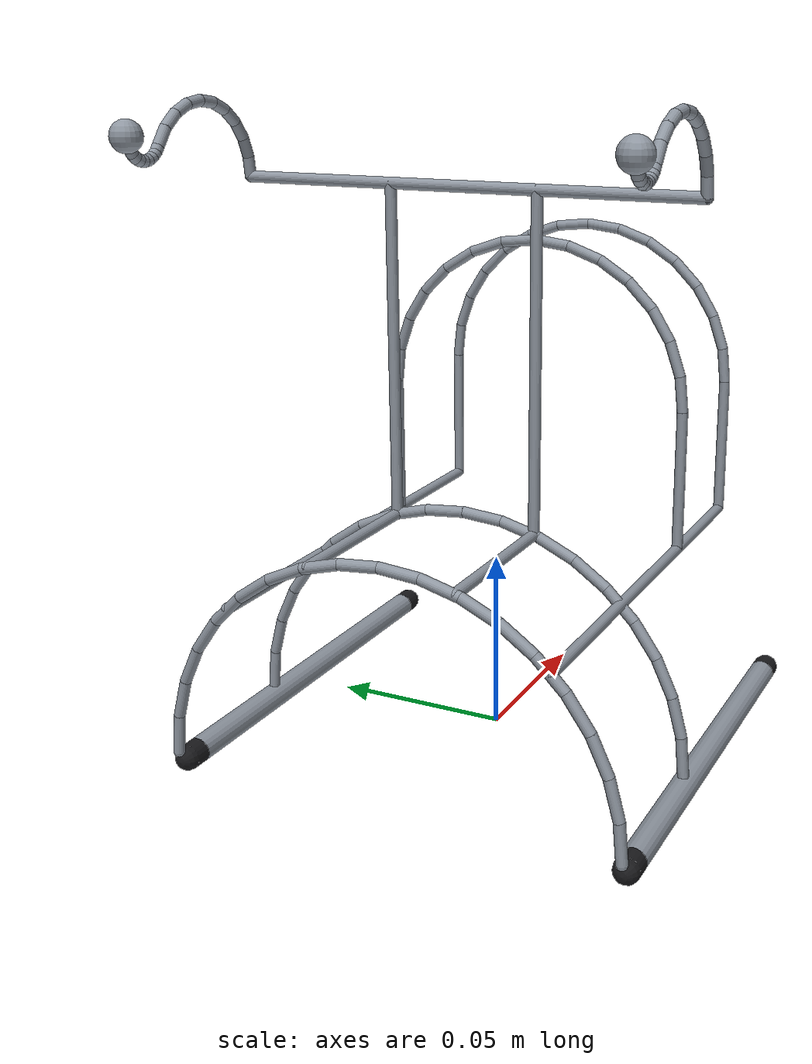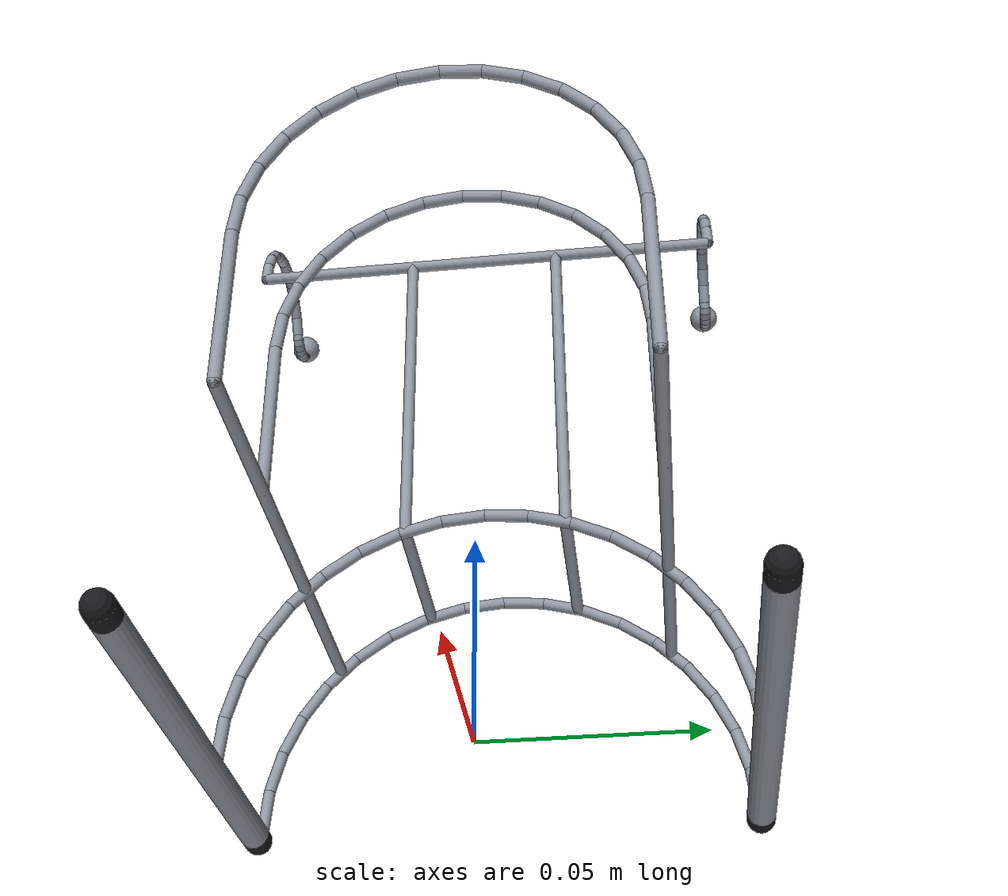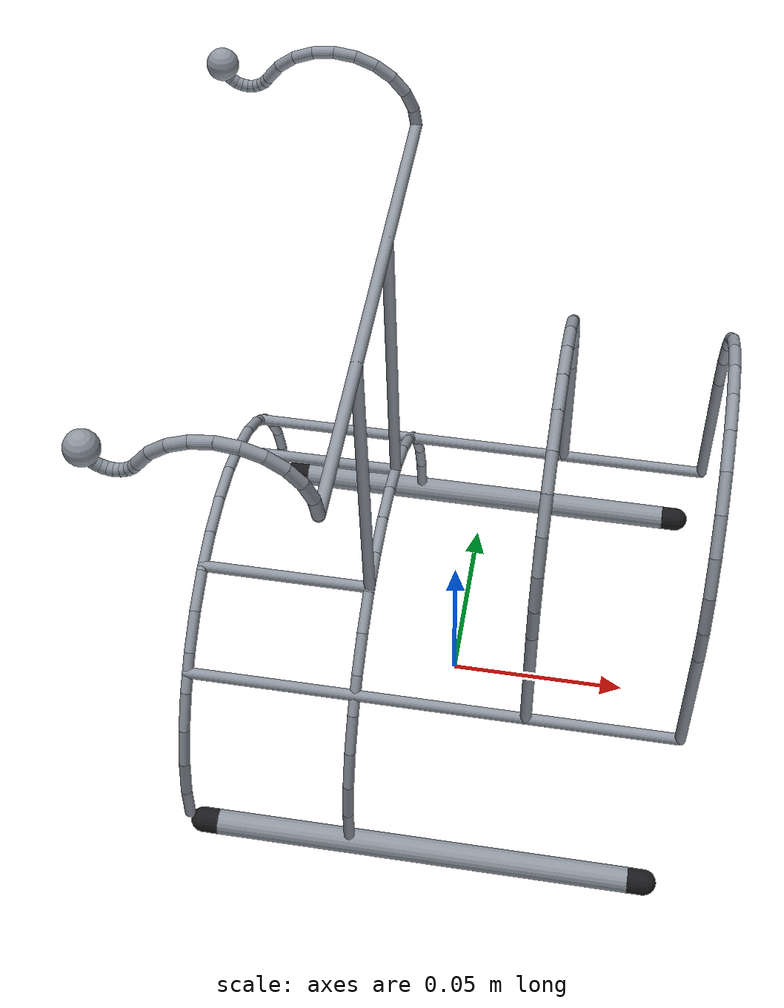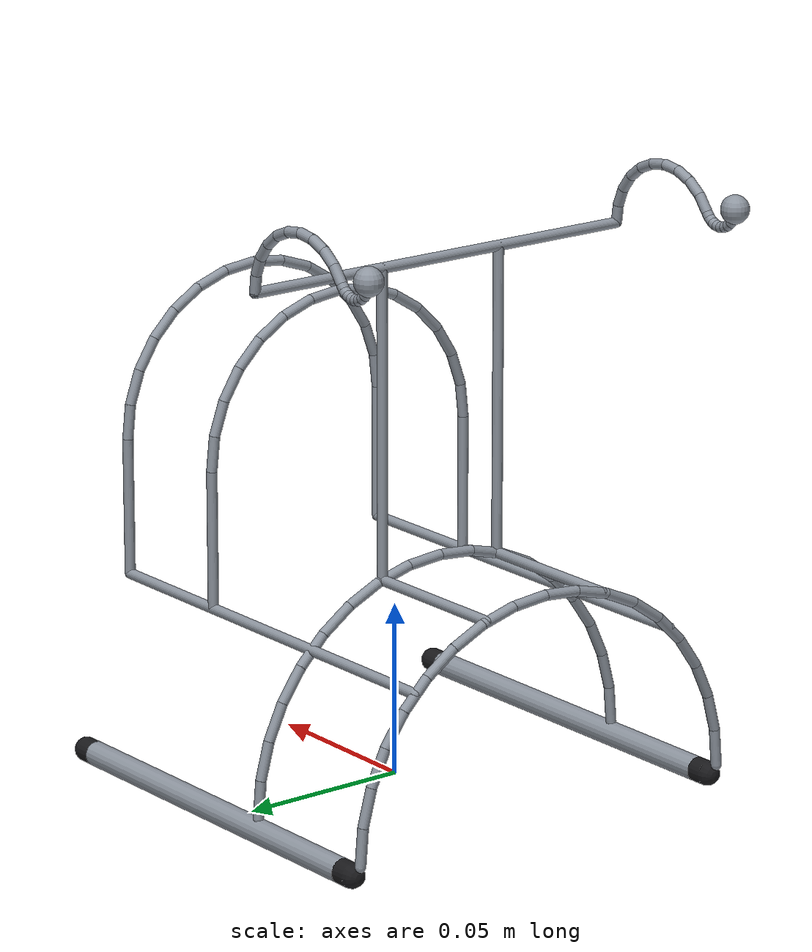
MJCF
<mujoco model="cup_holder">

  <asset>
    <material name="chrome" rgba="0.56 0.59 0.63 1"
              specular="1" shininess="1" reflectance="0.7"/>
    <material name="rack_endcap" rgba="0.10 0.10 0.11 1"
              specular="0.3" shininess="0.3"/>
  </asset>

  <default>
    <default class="rack">
      <geom condim="4" friction="1.2 0.05 0.001" solref="0.01 1" material="chrome" density="7800"/>
    </default>
    <default class="rack_rail">
      <geom condim="4" friction="1.2 0.05 0.001" solref="0.01 1" material="chrome" density="2000"/>
    </default>
    <default class="rack_cap">
      <geom condim="4" friction="1.2 0.05 0.001" solref="0.01 1" material="rack_endcap" density="1100"/>
    </default>
  </default>

  <worldbody>
    <body name="root">
      <freejoint name="free"/>
      <!-- 1. Base rails with black end caps. -->
      <geom class="rack_rail" type="capsule" fromto="-0.05700 -0.06250 +0.00350 +0.05700 -0.06250 +0.00350" size="0.00350"/>
      <geom class="rack_cap" type="capsule" fromto="-0.05700 -0.06250 +0.00350 -0.06150 -0.06250 +0.00350" size="0.00350"/>
      <geom class="rack_cap" type="capsule" fromto="+0.05700 -0.06250 +0.00350 +0.06150 -0.06250 +0.00350" size="0.00350"/>
      <geom class="rack_rail" type="capsule" fromto="-0.05700 +0.06250 +0.00350 +0.05700 +0.06250 +0.00350" size="0.00350"/>
      <geom class="rack_cap" type="capsule" fromto="-0.05700 +0.06250 +0.00350 -0.06150 +0.06250 +0.00350" size="0.00350"/>
      <geom class="rack_cap" type="capsule" fromto="+0.05700 +0.06250 +0.00350 +0.06150 +0.06250 +0.00350" size="0.00350"/>

      <!-- 2. Semicircle arches on the rails. -->
      <geom class="rack" type="capsule" fromto="-0.06500 +0.06250 +0.00700 -0.06500 +0.06155 +0.01785" size="0.00150"/>
      <geom class="rack" type="capsule" fromto="-0.06500 +0.06155 +0.01785 -0.06500 +0.05873 +0.02838" size="0.00150"/>
      <geom class="rack" type="capsule" fromto="-0.06500 +0.05873 +0.02838 -0.06500 +0.05413 +0.03825" size="0.00150"/>
      <geom class="rack" type="capsule" fromto="-0.06500 +0.05413 +0.03825 -0.06500 +0.04788 +0.04717" size="0.00150"/>
      <geom class="rack" type="capsule" fromto="-0.06500 +0.04788 +0.04717 -0.06500 +0.04017 +0.05488" size="0.00150"/>
      <geom class="rack" type="capsule" fromto="-0.06500 +0.04017 +0.05488 -0.06500 +0.03125 +0.06113" size="0.00150"/>
      <geom class="rack" type="capsule" fromto="-0.06500 +0.03125 +0.06113 -0.06500 +0.02138 +0.06573" size="0.00150"/>
      <geom class="rack" type="capsule" fromto="-0.06500 +0.02138 +0.06573 -0.06500 +0.01085 +0.06855" size="0.00150"/>
      <geom class="rack" type="capsule" fromto="-0.06500 +0.01085 +0.06855 -0.06500 +0.00000 +0.06950" size="0.00150"/>
      <geom class="rack" type="capsule" fromto="-0.06500 +0.00000 +0.06950 -0.06500 -0.01085 +0.06855" size="0.00150"/>
      <geom class="rack" type="capsule" fromto="-0.06500 -0.01085 +0.06855 -0.06500 -0.02138 +0.06573" size="0.00150"/>
      <geom class="rack" type="capsule" fromto="-0.06500 -0.02138 +0.06573 -0.06500 -0.03125 +0.06113" size="0.00150"/>
      <geom class="rack" type="capsule" fromto="-0.06500 -0.03125 +0.06113 -0.06500 -0.04017 +0.05488" size="0.00150"/>
      <geom class="rack" type="capsule" fromto="-0.06500 -0.04017 +0.05488 -0.06500 -0.04788 +0.04717" size="0.00150"/>
      <geom class="rack" type="capsule" fromto="-0.06500 -0.04788 +0.04717 -0.06500 -0.05413 +0.03825" size="0.00150"/>
      <geom class="rack" type="capsule" fromto="-0.06500 -0.05413 +0.03825 -0.06500 -0.05873 +0.02838" size="0.00150"/>
      <geom class="rack" type="capsule" fromto="-0.06500 -0.05873 +0.02838 -0.06500 -0.06155 +0.01785" size="0.00150"/>
      <geom class="rack" type="capsule" fromto="-0.06500 -0.06155 +0.01785 -0.06500 -0.06250 +0.00700" size="0.00150"/>
      <geom class="rack" type="capsule" fromto="-0.02000 +0.06250 +0.00700 -0.02000 +0.06155 +0.01785" size="0.00150"/>
      <geom class="rack" type="capsule" fromto="-0.02000 +0.06155 +0.01785 -0.02000 +0.05873 +0.02838" size="0.00150"/>
      <geom class="rack" type="capsule" fromto="-0.02000 +0.05873 +0.02838 -0.02000 +0.05413 +0.03825" size="0.00150"/>
      <geom class="rack" type="capsule" fromto="-0.02000 +0.05413 +0.03825 -0.02000 +0.04788 +0.04717" size="0.00150"/>
      <geom class="rack" type="capsule" fromto="-0.02000 +0.04788 +0.04717 -0.02000 +0.04017 +0.05488" size="0.00150"/>
      <geom class="rack" type="capsule" fromto="-0.02000 +0.04017 +0.05488 -0.02000 +0.03125 +0.06113" size="0.00150"/>
      <geom class="rack" type="capsule" fromto="-0.02000 +0.03125 +0.06113 -0.02000 +0.02138 +0.06573" size="0.00150"/>
      <geom class="rack" type="capsule" fromto="-0.02000 +0.02138 +0.06573 -0.02000 +0.01085 +0.06855" size="0.00150"/>
      <geom class="rack" type="capsule" fromto="-0.02000 +0.01085 +0.06855 -0.02000 +0.00000 +0.06950" size="0.00150"/>
      <geom class="rack" type="capsule" fromto="-0.02000 +0.00000 +0.06950 -0.02000 -0.01085 +0.06855" size="0.00150"/>
      <geom class="rack" type="capsule" fromto="-0.02000 -0.01085 +0.06855 -0.02000 -0.02138 +0.06573" size="0.00150"/>
      <geom class="rack" type="capsule" fromto="-0.02000 -0.02138 +0.06573 -0.02000 -0.03125 +0.06113" size="0.00150"/>
      <geom class="rack" type="capsule" fromto="-0.02000 -0.03125 +0.06113 -0.02000 -0.04017 +0.05488" size="0.00150"/>
      <geom class="rack" type="capsule" fromto="-0.02000 -0.04017 +0.05488 -0.02000 -0.04788 +0.04717" size="0.00150"/>
      <geom class="rack" type="capsule" fromto="-0.02000 -0.04788 +0.04717 -0.02000 -0.05413 +0.03825" size="0.00150"/>
      <geom class="rack" type="capsule" fromto="-0.02000 -0.05413 +0.03825 -0.02000 -0.05873 +0.02838" size="0.00150"/>
      <geom class="rack" type="capsule" fromto="-0.02000 -0.05873 +0.02838 -0.02000 -0.06155 +0.01785" size="0.00150"/>
      <geom class="rack" type="capsule" fromto="-0.02000 -0.06155 +0.01785 -0.02000 -0.06250 +0.00700" size="0.00150"/>

      <!-- 3. Side bars along the rails, on the semicircles' flanks. -->
      <geom class="rack" type="capsule" fromto="-0.06500 -0.04419 +0.05119 +0.06500 -0.04419 +0.05119" size="0.00150"/>
      <geom class="rack" type="capsule" fromto="-0.06500 +0.04419 +0.05119 +0.06500 +0.04419 +0.05119" size="0.00150"/>

      <!-- 4. Elongated arches on the side bars: the plate slot. -->
      <geom class="rack" type="capsule" fromto="+0.02500 -0.04419 +0.05119 +0.02500 -0.04419 +0.09081" size="0.00150"/>
      <geom class="rack" type="capsule" fromto="+0.02500 -0.04419 +0.09081 +0.02500 -0.04309 +0.10064" size="0.00150"/>
      <geom class="rack" type="capsule" fromto="+0.02500 -0.04309 +0.10064 +0.02500 -0.03982 +0.10998" size="0.00150"/>
      <geom class="rack" type="capsule" fromto="+0.02500 -0.03982 +0.10998 +0.02500 -0.03455 +0.11836" size="0.00150"/>
      <geom class="rack" type="capsule" fromto="+0.02500 -0.03455 +0.11836 +0.02500 -0.02755 +0.12536" size="0.00150"/>
      <geom class="rack" type="capsule" fromto="+0.02500 -0.02755 +0.12536 +0.02500 -0.01918 +0.13062" size="0.00150"/>
      <geom class="rack" type="capsule" fromto="+0.02500 -0.01918 +0.13062 +0.02500 -0.00983 +0.13389" size="0.00150"/>
      <geom class="rack" type="capsule" fromto="+0.02500 -0.00983 +0.13389 +0.02500 +0.00000 +0.13500" size="0.00150"/>
      <geom class="rack" type="capsule" fromto="+0.02500 +0.00000 +0.13500 +0.02500 +0.00983 +0.13389" size="0.00150"/>
      <geom class="rack" type="capsule" fromto="+0.02500 +0.00983 +0.13389 +0.02500 +0.01918 +0.13062" size="0.00150"/>
      <geom class="rack" type="capsule" fromto="+0.02500 +0.01918 +0.13062 +0.02500 +0.02755 +0.12536" size="0.00150"/>
      <geom class="rack" type="capsule" fromto="+0.02500 +0.02755 +0.12536 +0.02500 +0.03455 +0.11836" size="0.00150"/>
      <geom class="rack" type="capsule" fromto="+0.02500 +0.03455 +0.11836 +0.02500 +0.03982 +0.10998" size="0.00150"/>
      <geom class="rack" type="capsule" fromto="+0.02500 +0.03982 +0.10998 +0.02500 +0.04309 +0.10064" size="0.00150"/>
      <geom class="rack" type="capsule" fromto="+0.02500 +0.04309 +0.10064 +0.02500 +0.04419 +0.09081" size="0.00150"/>
      <geom class="rack" type="capsule" fromto="+0.02500 +0.04419 +0.09081 +0.02500 +0.04419 +0.05119" size="0.00150"/>
      <geom class="rack" type="capsule" fromto="+0.06500 -0.04419 +0.05119 +0.06500 -0.04419 +0.09081" size="0.00150"/>
      <geom class="rack" type="capsule" fromto="+0.06500 -0.04419 +0.09081 +0.06500 -0.04309 +0.10064" size="0.00150"/>
      <geom class="rack" type="capsule" fromto="+0.06500 -0.04309 +0.10064 +0.06500 -0.03982 +0.10998" size="0.00150"/>
      <geom class="rack" type="capsule" fromto="+0.06500 -0.03982 +0.10998 +0.06500 -0.03455 +0.11836" size="0.00150"/>
      <geom class="rack" type="capsule" fromto="+0.06500 -0.03455 +0.11836 +0.06500 -0.02755 +0.12536" size="0.00150"/>
      <geom class="rack" type="capsule" fromto="+0.06500 -0.02755 +0.12536 +0.06500 -0.01918 +0.13062" size="0.00150"/>
      <geom class="rack" type="capsule" fromto="+0.06500 -0.01918 +0.13062 +0.06500 -0.00983 +0.13389" size="0.00150"/>
      <geom class="rack" type="capsule" fromto="+0.06500 -0.00983 +0.13389 +0.06500 +0.00000 +0.13500" size="0.00150"/>
      <geom class="rack" type="capsule" fromto="+0.06500 +0.00000 +0.13500 +0.06500 +0.00983 +0.13389" size="0.00150"/>
      <geom class="rack" type="capsule" fromto="+0.06500 +0.00983 +0.13389 +0.06500 +0.01918 +0.13062" size="0.00150"/>
      <geom class="rack" type="capsule" fromto="+0.06500 +0.01918 +0.13062 +0.06500 +0.02755 +0.12536" size="0.00150"/>
      <geom class="rack" type="capsule" fromto="+0.06500 +0.02755 +0.12536 +0.06500 +0.03455 +0.11836" size="0.00150"/>
      <geom class="rack" type="capsule" fromto="+0.06500 +0.03455 +0.11836 +0.06500 +0.03982 +0.10998" size="0.00150"/>
      <geom class="rack" type="capsule" fromto="+0.06500 +0.03982 +0.10998 +0.06500 +0.04309 +0.10064" size="0.00150"/>
      <geom class="rack" type="capsule" fromto="+0.06500 +0.04309 +0.10064 +0.06500 +0.04419 +0.09081" size="0.00150"/>
      <geom class="rack" type="capsule" fromto="+0.06500 +0.04419 +0.09081 +0.06500 +0.04419 +0.05119" size="0.00150"/>

      <!-- 5. Two short bars across the semicircle crowns, and a post off each. -->
      <geom class="rack" type="capsule" fromto="-0.06500 -0.02000 +0.06621 -0.02000 -0.02000 +0.06621" size="0.00150"/>
      <geom class="rack" type="capsule" fromto="-0.02000 -0.02000 +0.06621 -0.02000 -0.02000 +0.15350" size="0.00150"/>
      <geom class="rack" type="capsule" fromto="-0.06500 +0.02000 +0.06621 -0.02000 +0.02000 +0.06621" size="0.00150"/>
      <geom class="rack" type="capsule" fromto="-0.02000 +0.02000 +0.06621 -0.02000 +0.02000 +0.15350" size="0.00150"/>

      <!-- 6-7. Rod, and a shepherd's-crook cup hook at each end. -->
      <geom class="rack" type="capsule" fromto="-0.02000 -0.06200 +0.15350 -0.02000 +0.06200 +0.15350" size="0.00150"/>
      <geom class="rack" type="capsule" fromto="-0.02000 -0.06200 +0.15350 -0.02068 -0.06200 +0.15868" size="0.00150"/>
      <geom class="rack" type="capsule" fromto="-0.02068 -0.06200 +0.15868 -0.02268 -0.06200 +0.16350" size="0.00150"/>
      <geom class="rack" type="capsule" fromto="-0.02268 -0.06200 +0.16350 -0.02586 -0.06200 +0.16764" size="0.00150"/>
      <geom class="rack" type="capsule" fromto="-0.02586 -0.06200 +0.16764 -0.03000 -0.06200 +0.17082" size="0.00150"/>
      <geom class="rack" type="capsule" fromto="-0.03000 -0.06200 +0.17082 -0.03482 -0.06200 +0.17282" size="0.00150"/>
      <geom class="rack" type="capsule" fromto="-0.03482 -0.06200 +0.17282 -0.04000 -0.06200 +0.17350" size="0.00150"/>
      <geom class="rack" type="capsule" fromto="-0.04000 -0.06200 +0.17350 -0.04518 -0.06200 +0.17282" size="0.00150"/>
      <geom class="rack" type="capsule" fromto="-0.04518 -0.06200 +0.17282 -0.05000 -0.06200 +0.17082" size="0.00150"/>
      <geom class="rack" type="capsule" fromto="-0.05000 -0.06200 +0.17082 -0.05414 -0.06200 +0.16764" size="0.00150"/>
      <geom class="rack" type="capsule" fromto="-0.05414 -0.06200 +0.16764 -0.05732 -0.06200 +0.16350" size="0.00150"/>
      <geom class="rack" type="capsule" fromto="-0.05732 -0.06200 +0.16350 -0.05827 -0.06200 +0.16226" size="0.00150"/>
      <geom class="rack" type="capsule" fromto="-0.05827 -0.06200 +0.16226 -0.05952 -0.06200 +0.16130" size="0.00150"/>
      <geom class="rack" type="capsule" fromto="-0.05952 -0.06200 +0.16130 -0.06096 -0.06200 +0.16070" size="0.00150"/>
      <geom class="rack" type="capsule" fromto="-0.06096 -0.06200 +0.16070 -0.06252 -0.06200 +0.16050" size="0.00150"/>
      <geom class="rack" type="capsule" fromto="-0.06252 -0.06200 +0.16050 -0.06407 -0.06200 +0.16070" size="0.00150"/>
      <geom class="rack" type="capsule" fromto="-0.06407 -0.06200 +0.16070 -0.06552 -0.06200 +0.16130" size="0.00150"/>
      <geom class="rack" type="capsule" fromto="-0.06552 -0.06200 +0.16130 -0.06676 -0.06200 +0.16226" size="0.00150"/>
      <geom class="rack" type="capsule" fromto="-0.06676 -0.06200 +0.16226 -0.06771 -0.06200 +0.16350" size="0.00150"/>
      <geom class="rack" type="capsule" fromto="-0.06771 -0.06200 +0.16350 -0.06831 -0.06200 +0.16495" size="0.00150"/>
      <geom class="rack" type="capsule" fromto="-0.06831 -0.06200 +0.16495 -0.06852 -0.06200 +0.16650" size="0.00150"/>
      <geom class="rack" type="sphere" pos="-0.06852 -0.06200 +0.16650" size="0.00400"/>
      <geom class="rack" type="capsule" fromto="-0.02000 +0.06200 +0.15350 -0.02068 +0.06200 +0.15868" size="0.00150"/>
      <geom class="rack" type="capsule" fromto="-0.02068 +0.06200 +0.15868 -0.02268 +0.06200 +0.16350" size="0.00150"/>
      <geom class="rack" type="capsule" fromto="-0.02268 +0.06200 +0.16350 -0.02586 +0.06200 +0.16764" size="0.00150"/>
      <geom class="rack" type="capsule" fromto="-0.02586 +0.06200 +0.16764 -0.03000 +0.06200 +0.17082" size="0.00150"/>
      <geom class="rack" type="capsule" fromto="-0.03000 +0.06200 +0.17082 -0.03482 +0.06200 +0.17282" size="0.00150"/>
      <geom class="rack" type="capsule" fromto="-0.03482 +0.06200 +0.17282 -0.04000 +0.06200 +0.17350" size="0.00150"/>
      <geom class="rack" type="capsule" fromto="-0.04000 +0.06200 +0.17350 -0.04518 +0.06200 +0.17282" size="0.00150"/>
      <geom class="rack" type="capsule" fromto="-0.04518 +0.06200 +0.17282 -0.05000 +0.06200 +0.17082" size="0.00150"/>
      <geom class="rack" type="capsule" fromto="-0.05000 +0.06200 +0.17082 -0.05414 +0.06200 +0.16764" size="0.00150"/>
      <geom class="rack" type="capsule" fromto="-0.05414 +0.06200 +0.16764 -0.05732 +0.06200 +0.16350" size="0.00150"/>
      <geom class="rack" type="capsule" fromto="-0.05732 +0.06200 +0.16350 -0.05827 +0.06200 +0.16226" size="0.00150"/>
      <geom class="rack" type="capsule" fromto="-0.05827 +0.06200 +0.16226 -0.05952 +0.06200 +0.16130" size="0.00150"/>
      <geom class="rack" type="capsule" fromto="-0.05952 +0.06200 +0.16130 -0.06096 +0.06200 +0.16070" size="0.00150"/>
      <geom class="rack" type="capsule" fromto="-0.06096 +0.06200 +0.16070 -0.06252 +0.06200 +0.16050" size="0.00150"/>
      <geom class="rack" type="capsule" fromto="-0.06252 +0.06200 +0.16050 -0.06407 +0.06200 +0.16070" size="0.00150"/>
      <geom class="rack" type="capsule" fromto="-0.06407 +0.06200 +0.16070 -0.06552 +0.06200 +0.16130" size="0.00150"/>
      <geom class="rack" type="capsule" fromto="-0.06552 +0.06200 +0.16130 -0.06676 +0.06200 +0.16226" size="0.00150"/>
      <geom class="rack" type="capsule" fromto="-0.06676 +0.06200 +0.16226 -0.06771 +0.06200 +0.16350" size="0.00150"/>
      <geom class="rack" type="capsule" fromto="-0.06771 +0.06200 +0.16350 -0.06831 +0.06200 +0.16495" size="0.00150"/>
      <geom class="rack" type="capsule" fromto="-0.06831 +0.06200 +0.16495 -0.06852 +0.06200 +0.16650" size="0.00150"/>
      <geom class="rack" type="sphere" pos="-0.06852 +0.06200 +0.16650" size="0.00400"/>
    </body>
  </worldbody>
</mujoco>
